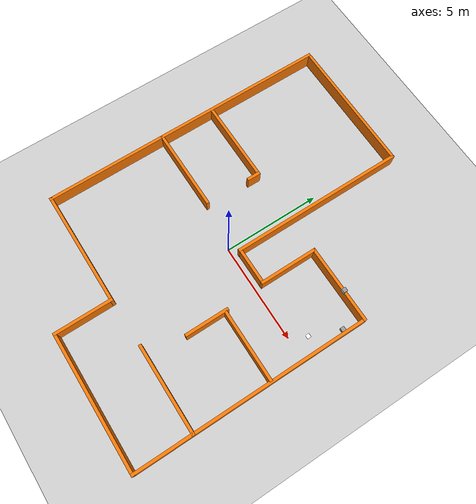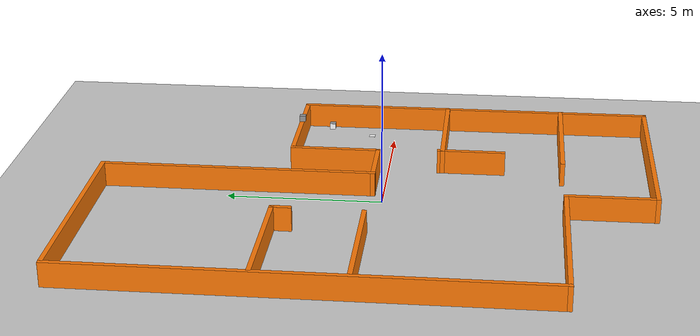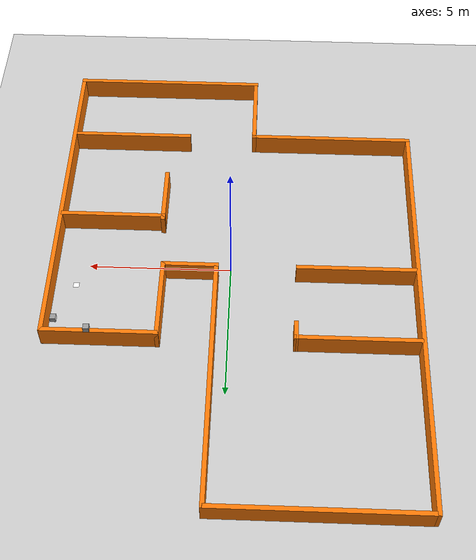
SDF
<sdf version="1.7">
 <world name="default">
  <model name="ground_plane">
   <static>1</static>
   <link name="link">
    <collision name="collision">
     <geometry><plane><normal>0 0 1</normal><size>100 100</size></plane></geometry>
     <surface>
      <contact><collide_bitmask>65535</collide_bitmask></contact>
      <friction><ode><mu>100</mu><mu2>50</mu2></ode></friction>
     </surface>
    </collision>
    <visual name="visual">
     <cast_shadows>0</cast_shadows>
     <geometry><plane><normal>0 0 1</normal><size>100 100</size></plane></geometry>
     <material>
      <script><uri>file://media/materials/scripts/gazebo.material</uri><name>Gazebo/Grey</name></script>
     </material>
    </visual>
   </link>
  </model>
  <model name="house_1">
   <link name="Wall_43">
    <pose>-2.787 8.425 0 0 -0 0</pose>
    <inertial>
     <mass>1</mass>
     <inertia><ixx>1</ixx><ixy>0</ixy><ixz>0</ixz><iyy>1</iyy><iyz>0</iyz><izz>1</izz></inertia>
    </inertial>
    <visual name="Wall_43_Visual">
     <pose>0 0 0.4 0 -0 0</pose>
     <geometry><box><size>7 0.15 0.8</size></box></geometry>
     <material>
      <script><uri>file://media/materials/scripts/gazebo.material</uri><name>Gazebo/Grey</name></script>
      <ambient>0.996 0.475 0.02 1</ambient>
      <shader type="pixel"><normal_map>__default__</normal_map></shader>
      <diffuse>0.7 0.7 0.7 1</diffuse>
      <specular>0.01 0.01 0.01 1</specular>
      <emissive>0 0 0 1</emissive>
     </material>
     <meta><layer>0</layer></meta>
    </visual>
    <collision name="Wall_43_Collision">
     <pose>0 0 0.4 0 -0 0</pose>
     <geometry><box><size>7 0.15 0.8</size></box></geometry>
     <surface>
      <friction>
       <ode><mu>1</mu><mu2>1</mu2><fdir1>0 0 0</fdir1><slip1>0</slip1><slip2>0</slip2></ode>
       <torsional>
        <coefficient>1</coefficient>
        <patch_radius>0</patch_radius>
        <surface_radius>0</surface_radius>
        <use_patch_radius>1</use_patch_radius>
        <ode><slip>0</slip></ode>
       </torsional>
      </friction>
      <bounce><restitution_coefficient>0</restitution_coefficient><threshold>1e+06</threshold></bounce>
      <contact>
       <collide_without_contact>0</collide_without_contact>
       <collide_without_contact_bitmask>1</collide_without_contact_bitmask>
       <collide_bitmask>1</collide_bitmask>
       <ode>
        <soft_cfm>0</soft_cfm>
        <soft_erp>0.2</soft_erp>
        <kp>1e+13</kp>
        <kd>1</kd>
        <max_vel>0.01</max_vel>
        <min_depth>0</min_depth>
       </ode>
       <bullet>
        <split_impulse>1</split_impulse>
        <split_impulse_penetration_threshold>-0.01</split_impulse_penetration_threshold>
        <soft_cfm>0</soft_cfm>
        <soft_erp>0.2</soft_erp>
        <kp>1e+13</kp>
        <kd>1</kd>
       </bullet>
      </contact>
     </surface>
    </collision>
   </link>
   <link name="Wall_44">
    <pose>0.642 3.99 0 0 0 -1.5708</pose>
    <inertial>
     <mass>1</mass>
     <inertia><ixx>1</ixx><ixy>0</ixy><ixz>0</ixz><iyy>1</iyy><iyz>0</iyz><izz>1</izz></inertia>
    </inertial>
    <visual name="Wall_44_Visual">
     <pose>0 0 0.4 0 -0 0</pose>
     <geometry><box><size>9 0.15 0.8</size></box></geometry>
     <material>
      <script><uri>file://media/materials/scripts/gazebo.material</uri><name>Gazebo/Grey</name></script>
      <ambient>0.996 0.475 0.02 1</ambient>
      <shader type="pixel"><normal_map>__default__</normal_map></shader>
      <diffuse>0.7 0.7 0.7 1</diffuse>
      <specular>0.01 0.01 0.01 1</specular>
      <emissive>0 0 0 1</emissive>
     </material>
     <meta><layer>0</layer></meta>
    </visual>
    <collision name="Wall_44_Collision">
     <pose>0 0 0.4 0 -0 0</pose>
     <geometry><box><size>9 0.15 0.8</size></box></geometry>
     <surface>
      <friction>
       <ode><mu>1</mu><mu2>1</mu2><fdir1>0 0 0</fdir1><slip1>0</slip1><slip2>0</slip2></ode>
       <torsional>
        <coefficient>1</coefficient>
        <patch_radius>0</patch_radius>
        <surface_radius>0</surface_radius>
        <use_patch_radius>1</use_patch_radius>
        <ode><slip>0</slip></ode>
       </torsional>
      </friction>
      <bounce><restitution_coefficient>0</restitution_coefficient><threshold>1e+06</threshold></bounce>
      <contact>
       <collide_without_contact>0</collide_without_contact>
       <collide_without_contact_bitmask>1</collide_without_contact_bitmask>
       <collide_bitmask>1</collide_bitmask>
       <ode>
        <soft_cfm>0</soft_cfm>
        <soft_erp>0.2</soft_erp>
        <kp>1e+13</kp>
        <kd>1</kd>
        <max_vel>0.01</max_vel>
        <min_depth>0</min_depth>
       </ode>
       <bullet>
        <split_impulse>1</split_impulse>
        <split_impulse_penetration_threshold>-0.01</split_impulse_penetration_threshold>
        <soft_cfm>0</soft_cfm>
        <soft_erp>0.2</soft_erp>
        <kp>1e+13</kp>
        <kd>1</kd>
       </bullet>
      </contact>
     </surface>
    </collision>
   </link>
   <link name="Wall_45">
    <pose>1.563 -0.425 0 0 -0 0</pose>
    <inertial>
     <mass>1</mass>
     <inertia><ixx>1</ixx><ixy>0</ixy><ixz>0</ixz><iyy>1</iyy><iyz>0</iyz><izz>1</izz></inertia>
    </inertial>
    <visual name="Wall_45_Visual">
     <pose>0 0 0.4 0 -0 0</pose>
     <geometry><box><size>2 0.15 0.8</size></box></geometry>
     <material>
      <script><uri>file://media/materials/scripts/gazebo.material</uri><name>Gazebo/Grey</name></script>
      <ambient>0.996 0.475 0.02 1</ambient>
      <shader type="pixel"><normal_map>__default__</normal_map></shader>
      <diffuse>0.7 0.7 0.7 1</diffuse>
      <specular>0.01 0.01 0.01 1</specular>
      <emissive>0 0 0 1</emissive>
     </material>
     <meta><layer>0</layer></meta>
    </visual>
    <collision name="Wall_45_Collision">
     <pose>0 0 0.4 0 -0 0</pose>
     <geometry><box><size>2 0.15 0.8</size></box></geometry>
     <surface>
      <friction>
       <ode><mu>1</mu><mu2>1</mu2><fdir1>0 0 0</fdir1><slip1>0</slip1><slip2>0</slip2></ode>
       <torsional>
        <coefficient>1</coefficient>
        <patch_radius>0</patch_radius>
        <surface_radius>0</surface_radius>
        <use_patch_radius>1</use_patch_radius>
        <ode><slip>0</slip></ode>
       </torsional>
      </friction>
      <bounce><restitution_coefficient>0</restitution_coefficient><threshold>1e+06</threshold></bounce>
      <contact>
       <collide_without_contact>0</collide_without_contact>
       <collide_without_contact_bitmask>1</collide_without_contact_bitmask>
       <collide_bitmask>1</collide_bitmask>
       <ode>
        <soft_cfm>0</soft_cfm>
        <soft_erp>0.2</soft_erp>
        <kp>1e+13</kp>
        <kd>1</kd>
        <max_vel>0.01</max_vel>
        <min_depth>0</min_depth>
       </ode>
       <bullet>
        <split_impulse>1</split_impulse>
        <split_impulse_penetration_threshold>-0.01</split_impulse_penetration_threshold>
        <soft_cfm>0</soft_cfm>
        <soft_erp>0.2</soft_erp>
        <kp>1e+13</kp>
        <kd>1</kd>
       </bullet>
      </contact>
     </surface>
    </collision>
   </link>
   <link name="Wall_46">
    <pose>2.488 1 0 0 -0 1.5708</pose>
    <inertial>
     <mass>1</mass>
     <inertia><ixx>1</ixx><ixy>0</ixy><ixz>0</ixz><iyy>1</iyy><iyz>0</iyz><izz>1</izz></inertia>
    </inertial>
    <visual name="Wall_46_Visual">
     <pose>0 0 0.4 0 -0 0</pose>
     <geometry><box><size>3 0.15 0.8</size></box></geometry>
     <material>
      <script><uri>file://media/materials/scripts/gazebo.material</uri><name>Gazebo/Grey</name></script>
      <ambient>0.996 0.475 0.02 1</ambient>
      <shader type="pixel"><normal_map>__default__</normal_map></shader>
      <diffuse>0.7 0.7 0.7 1</diffuse>
      <specular>0.01 0.01 0.01 1</specular>
      <emissive>0 0 0 1</emissive>
     </material>
     <meta><layer>0</layer></meta>
    </visual>
    <collision name="Wall_46_Collision">
     <pose>0 0 0.4 0 -0 0</pose>
     <geometry><box><size>3 0.15 0.8</size></box></geometry>
     <surface>
      <friction>
       <ode><mu>1</mu><mu2>1</mu2><fdir1>0 0 0</fdir1><slip1>0</slip1><slip2>0</slip2></ode>
       <torsional>
        <coefficient>1</coefficient>
        <patch_radius>0</patch_radius>
        <surface_radius>0</surface_radius>
        <use_patch_radius>1</use_patch_radius>
        <ode><slip>0</slip></ode>
       </torsional>
      </friction>
      <bounce><restitution_coefficient>0</restitution_coefficient><threshold>1e+06</threshold></bounce>
      <contact>
       <collide_without_contact>0</collide_without_contact>
       <collide_without_contact_bitmask>1</collide_without_contact_bitmask>
       <collide_bitmask>1</collide_bitmask>
       <ode>
        <soft_cfm>0</soft_cfm>
        <soft_erp>0.2</soft_erp>
        <kp>1e+13</kp>
        <kd>1</kd>
        <max_vel>0.01</max_vel>
        <min_depth>0</min_depth>
       </ode>
       <bullet>
        <split_impulse>1</split_impulse>
        <split_impulse_penetration_threshold>-0.01</split_impulse_penetration_threshold>
        <soft_cfm>0</soft_cfm>
        <soft_erp>0.2</soft_erp>
        <kp>1e+13</kp>
        <kd>1</kd>
       </bullet>
      </contact>
     </surface>
    </collision>
   </link>
   <link name="Wall_47">
    <pose>4.413 2.425 0 0 -0 0</pose>
    <visual name="Wall_47_Visual">
     <pose>0 0 0.4 0 -0 0</pose>
     <geometry><box><size>4 0.15 0.8</size></box></geometry>
     <material>
      <script><uri>file://media/materials/scripts/gazebo.material</uri><name>Gazebo/Grey</name></script>
      <ambient>0.996078 0.47451 0.0196078 1</ambient>
      <shader type="pixel"/>
      <diffuse>0.7 0.7 0.7 1</diffuse>
      <specular>0.01 0.01 0.01 1</specular>
      <emissive>0 0 0 1</emissive>
     </material>
     <meta><layer>0</layer></meta>
    </visual>
    <collision name="Wall_47_Collision">
     <pose>0 0 0.4 0 -0 0</pose>
     <geometry><box><size>4 0.15 0.8</size></box></geometry>
     <surface>
      <friction>
       <ode><mu>1</mu><mu2>1</mu2><fdir1>0 0 0</fdir1><slip1>0</slip1><slip2>0</slip2></ode>
       <torsional>
        <coefficient>1</coefficient>
        <patch_radius>0</patch_radius>
        <surface_radius>0</surface_radius>
        <use_patch_radius>1</use_patch_radius>
        <ode><slip>0</slip></ode>
       </torsional>
      </friction>
      <bounce><restitution_coefficient>0</restitution_coefficient><threshold>1e+06</threshold></bounce>
      <contact>
       <collide_without_contact>0</collide_without_contact>
       <collide_without_contact_bitmask>1</collide_without_contact_bitmask>
       <collide_bitmask>1</collide_bitmask>
       <ode>
        <soft_cfm>0</soft_cfm>
        <soft_erp>0.2</soft_erp>
        <kp>1e+13</kp>
        <kd>1</kd>
        <max_vel>0.01</max_vel>
        <min_depth>0</min_depth>
       </ode>
       <bullet>
        <split_impulse>1</split_impulse>
        <split_impulse_penetration_threshold>-0.01</split_impulse_penetration_threshold>
        <soft_cfm>0</soft_cfm>
        <soft_erp>0.2</soft_erp>
        <kp>1e+13</kp>
        <kd>1</kd>
       </bullet>
      </contact>
     </surface>
    </collision>
   </link>
   <link name="Wall_48">
    <pose>6.338 -3.5 0 0 0 -1.5708</pose>
    <inertial>
     <mass>1</mass>
     <inertia><ixx>1</ixx><ixy>0</ixy><ixz>0</ixz><iyy>1</iyy><iyz>0</iyz><izz>1</izz></inertia>
    </inertial>
    <visual name="Wall_48_Visual">
     <pose>0 0 0.4 0 -0 0</pose>
     <geometry><box><size>12 0.15 0.8</size></box></geometry>
     <material>
      <script><uri>file://media/materials/scripts/gazebo.material</uri><name>Gazebo/Grey</name></script>
      <ambient>0.996 0.475 0.02 1</ambient>
      <shader type="pixel"><normal_map>__default__</normal_map></shader>
      <diffuse>0.7 0.7 0.7 1</diffuse>
      <specular>0.01 0.01 0.01 1</specular>
      <emissive>0 0 0 1</emissive>
     </material>
     <meta><layer>0</layer></meta>
    </visual>
    <collision name="Wall_48_Collision">
     <pose>0 0 0.4 0 -0 0</pose>
     <geometry><box><size>12 0.15 0.8</size></box></geometry>
     <surface>
      <friction>
       <ode><mu>1</mu><mu2>1</mu2><fdir1>0 0 0</fdir1><slip1>0</slip1><slip2>0</slip2></ode>
       <torsional>
        <coefficient>1</coefficient>
        <patch_radius>0</patch_radius>
        <surface_radius>0</surface_radius>
        <use_patch_radius>1</use_patch_radius>
        <ode><slip>0</slip></ode>
       </torsional>
      </friction>
      <bounce><restitution_coefficient>0</restitution_coefficient><threshold>1e+06</threshold></bounce>
      <contact>
       <collide_without_contact>0</collide_without_contact>
       <collide_without_contact_bitmask>1</collide_without_contact_bitmask>
       <collide_bitmask>1</collide_bitmask>
       <ode>
        <soft_cfm>0</soft_cfm>
        <soft_erp>0.2</soft_erp>
        <kp>1e+13</kp>
        <kd>1</kd>
        <max_vel>0.01</max_vel>
        <min_depth>0</min_depth>
       </ode>
       <bullet>
        <split_impulse>1</split_impulse>
        <split_impulse_penetration_threshold>-0.01</split_impulse_penetration_threshold>
        <soft_cfm>0</soft_cfm>
        <soft_erp>0.2</soft_erp>
        <kp>1e+13</kp>
        <kd>1</kd>
       </bullet>
      </contact>
     </surface>
    </collision>
   </link>
   <link name="Wall_49">
    <pose>2.913 -9.425 0 0 -0 3.14159</pose>
    <inertial>
     <mass>1</mass>
     <inertia><ixx>1</ixx><ixy>0</ixy><ixz>0</ixz><iyy>1</iyy><iyz>0</iyz><izz>1</izz></inertia>
    </inertial>
    <visual name="Wall_49_Visual">
     <pose>0 0 0.4 0 -0 0</pose>
     <geometry><box><size>7 0.15 0.8</size></box></geometry>
     <material>
      <script><uri>file://media/materials/scripts/gazebo.material</uri><name>Gazebo/Grey</name></script>
      <ambient>0.996 0.475 0.02 1</ambient>
      <shader type="pixel"><normal_map>__default__</normal_map></shader>
      <diffuse>0.7 0.7 0.7 1</diffuse>
      <specular>0.01 0.01 0.01 1</specular>
      <emissive>0 0 0 1</emissive>
     </material>
     <meta><layer>0</layer></meta>
    </visual>
    <collision name="Wall_49_Collision">
     <pose>0 0 0.4 0 -0 0</pose>
     <geometry><box><size>7 0.15 0.8</size></box></geometry>
     <surface>
      <friction>
       <ode><mu>1</mu><mu2>1</mu2><fdir1>0 0 0</fdir1><slip1>0</slip1><slip2>0</slip2></ode>
       <torsional>
        <coefficient>1</coefficient>
        <patch_radius>0</patch_radius>
        <surface_radius>0</surface_radius>
        <use_patch_radius>1</use_patch_radius>
        <ode><slip>0</slip></ode>
       </torsional>
      </friction>
      <bounce><restitution_coefficient>0</restitution_coefficient><threshold>1e+06</threshold></bounce>
      <contact>
       <collide_without_contact>0</collide_without_contact>
       <collide_without_contact_bitmask>1</collide_without_contact_bitmask>
       <collide_bitmask>1</collide_bitmask>
       <ode>
        <soft_cfm>0</soft_cfm>
        <soft_erp>0.2</soft_erp>
        <kp>1e+13</kp>
        <kd>1</kd>
        <max_vel>0.01</max_vel>
        <min_depth>0</min_depth>
       </ode>
       <bullet>
        <split_impulse>1</split_impulse>
        <split_impulse_penetration_threshold>-0.01</split_impulse_penetration_threshold>
        <soft_cfm>0</soft_cfm>
        <soft_erp>0.2</soft_erp>
        <kp>1e+13</kp>
        <kd>1</kd>
       </bullet>
      </contact>
     </surface>
    </collision>
   </link>
   <link name="Wall_50">
    <pose>-0.512 -8 0 0 -0 1.5708</pose>
    <inertial>
     <mass>1</mass>
     <inertia><ixx>1</ixx><ixy>0</ixy><ixz>0</ixz><iyy>1</iyy><iyz>0</iyz><izz>1</izz></inertia>
    </inertial>
    <visual name="Wall_50_Visual">
     <pose>0 0 0.4 0 -0 0</pose>
     <geometry><box><size>3 0.15 0.8</size></box></geometry>
     <material>
      <script><uri>file://media/materials/scripts/gazebo.material</uri><name>Gazebo/Grey</name></script>
      <ambient>0.996 0.475 0.02 1</ambient>
      <shader type="pixel"><normal_map>__default__</normal_map></shader>
      <diffuse>0.7 0.7 0.7 1</diffuse>
      <specular>0.01 0.01 0.01 1</specular>
      <emissive>0 0 0 1</emissive>
     </material>
     <meta><layer>0</layer></meta>
    </visual>
    <collision name="Wall_50_Collision">
     <pose>0 0 0.4 0 -0 0</pose>
     <geometry><box><size>3 0.15 0.8</size></box></geometry>
     <surface>
      <friction>
       <ode><mu>1</mu><mu2>1</mu2><fdir1>0 0 0</fdir1><slip1>0</slip1><slip2>0</slip2></ode>
       <torsional>
        <coefficient>1</coefficient>
        <patch_radius>0</patch_radius>
        <surface_radius>0</surface_radius>
        <use_patch_radius>1</use_patch_radius>
        <ode><slip>0</slip></ode>
       </torsional>
      </friction>
      <bounce><restitution_coefficient>0</restitution_coefficient><threshold>1e+06</threshold></bounce>
      <contact>
       <collide_without_contact>0</collide_without_contact>
       <collide_without_contact_bitmask>1</collide_without_contact_bitmask>
       <collide_bitmask>1</collide_bitmask>
       <ode>
        <soft_cfm>0</soft_cfm>
        <soft_erp>0.2</soft_erp>
        <kp>1e+13</kp>
        <kd>1</kd>
        <max_vel>0.01</max_vel>
        <min_depth>0</min_depth>
       </ode>
       <bullet>
        <split_impulse>1</split_impulse>
        <split_impulse_penetration_threshold>-0.01</split_impulse_penetration_threshold>
        <soft_cfm>0</soft_cfm>
        <soft_erp>0.2</soft_erp>
        <kp>1e+13</kp>
        <kd>1</kd>
       </bullet>
      </contact>
     </surface>
    </collision>
   </link>
   <link name="Wall_51">
    <pose>-3.425 -6.575 0 0 -0 3.14159</pose>
    <visual name="Wall_51_Visual">
     <pose>0 0 0.4 0 -0 0</pose>
     <geometry><box><size>5.976 0.15 0.8</size></box></geometry>
     <material>
      <script><uri>file://media/materials/scripts/gazebo.material</uri><name>Gazebo/Grey</name></script>
      <ambient>0.996078 0.47451 0.0196078 1</ambient>
      <shader type="pixel"/>
      <diffuse>0.7 0.7 0.7 1</diffuse>
      <specular>0.01 0.01 0.01 1</specular>
      <emissive>0 0 0 1</emissive>
     </material>
     <meta><layer>0</layer></meta>
    </visual>
    <collision name="Wall_51_Collision">
     <pose>0 0 0.4 0 -0 0</pose>
     <geometry><box><size>5.976 0.15 0.8</size></box></geometry>
     <surface>
      <friction>
       <ode><mu>1</mu><mu2>1</mu2><fdir1>0 0 0</fdir1><slip1>0</slip1><slip2>0</slip2></ode>
       <torsional>
        <coefficient>1</coefficient>
        <patch_radius>0</patch_radius>
        <surface_radius>0</surface_radius>
        <use_patch_radius>1</use_patch_radius>
        <ode><slip>0</slip></ode>
       </torsional>
      </friction>
      <bounce><restitution_coefficient>0</restitution_coefficient><threshold>1e+06</threshold></bounce>
      <contact>
       <collide_without_contact>0</collide_without_contact>
       <collide_without_contact_bitmask>1</collide_without_contact_bitmask>
       <collide_bitmask>1</collide_bitmask>
       <ode>
        <soft_cfm>0</soft_cfm>
        <soft_erp>0.2</soft_erp>
        <kp>1e+13</kp>
        <kd>1</kd>
        <max_vel>0.01</max_vel>
        <min_depth>0</min_depth>
       </ode>
       <bullet>
        <split_impulse>1</split_impulse>
        <split_impulse_penetration_threshold>-0.01</split_impulse_penetration_threshold>
        <soft_cfm>0</soft_cfm>
        <soft_erp>0.2</soft_erp>
        <kp>1e+13</kp>
        <kd>1</kd>
       </bullet>
      </contact>
     </surface>
    </collision>
   </link>
   <link name="Wall_52">
    <pose>-6.338 0.9215 0 0 -0 1.5708</pose>
    <visual name="Wall_52_Visual">
     <pose>0 0 0.4 0 -0 0</pose>
     <geometry><box><size>15.1433 0.15 0.8</size></box></geometry>
     <material>
      <script><uri>file://media/materials/scripts/gazebo.material</uri><name>Gazebo/Grey</name></script>
      <ambient>0.996078 0.47451 0.0196078 1</ambient>
      <shader type="pixel"/>
      <diffuse>0.7 0.7 0.7 1</diffuse>
      <specular>0.01 0.01 0.01 1</specular>
      <emissive>0 0 0 1</emissive>
     </material>
     <meta><layer>0</layer></meta>
    </visual>
    <collision name="Wall_52_Collision">
     <pose>0 0 0.4 0 -0 0</pose>
     <geometry><box><size>15.1433 0.15 0.8</size></box></geometry>
     <surface>
      <friction>
       <ode><mu>1</mu><mu2>1</mu2><fdir1>0 0 0</fdir1><slip1>0</slip1><slip2>0</slip2></ode>
       <torsional>
        <coefficient>1</coefficient>
        <patch_radius>0</patch_radius>
        <surface_radius>0</surface_radius>
        <use_patch_radius>1</use_patch_radius>
        <ode><slip>0</slip></ode>
       </torsional>
      </friction>
      <bounce><restitution_coefficient>0</restitution_coefficient><threshold>1e+06</threshold></bounce>
      <contact>
       <collide_without_contact>0</collide_without_contact>
       <collide_without_contact_bitmask>1</collide_without_contact_bitmask>
       <collide_bitmask>1</collide_bitmask>
       <ode>
        <soft_cfm>0</soft_cfm>
        <soft_erp>0.2</soft_erp>
        <kp>1e+13</kp>
        <kd>1</kd>
        <max_vel>0.01</max_vel>
        <min_depth>0</min_depth>
       </ode>
       <bullet>
        <split_impulse>1</split_impulse>
        <split_impulse_penetration_threshold>-0.01</split_impulse_penetration_threshold>
        <soft_cfm>0</soft_cfm>
        <soft_erp>0.2</soft_erp>
        <kp>1e+13</kp>
        <kd>1</kd>
       </bullet>
      </contact>
     </surface>
    </collision>
   </link>
   <link name="Wall_54">
    <pose>-4.182 2.435 0 0 -0 0</pose>
    <visual name="Wall_54_Visual">
     <pose>0 0 0.4 0 -0 0</pose>
     <geometry><box><size>4.25 0.15 0.8</size></box></geometry>
     <material>
      <script><uri>file://media/materials/scripts/gazebo.material</uri><name>Gazebo/Grey</name></script>
      <ambient>0.996078 0.47451 0.0196078 1</ambient>
      <shader type="pixel"/>
      <diffuse>0.7 0.7 0.7 1</diffuse>
      <specular>0.01 0.01 0.01 1</specular>
      <emissive>0 0 0 1</emissive>
     </material>
     <meta><layer>0</layer></meta>
    </visual>
    <collision name="Wall_54_Collision">
     <pose>0 0 0.4 0 -0 0</pose>
     <geometry><box><size>4.25 0.15 0.8</size></box></geometry>
     <surface>
      <friction>
       <ode><mu>1</mu><mu2>1</mu2><fdir1>0 0 0</fdir1><slip1>0</slip1><slip2>0</slip2></ode>
       <torsional>
        <coefficient>1</coefficient>
        <patch_radius>0</patch_radius>
        <surface_radius>0</surface_radius>
        <use_patch_radius>1</use_patch_radius>
        <ode><slip>0</slip></ode>
       </torsional>
      </friction>
      <bounce><restitution_coefficient>0</restitution_coefficient><threshold>1e+06</threshold></bounce>
      <contact>
       <collide_without_contact>0</collide_without_contact>
       <collide_without_contact_bitmask>1</collide_without_contact_bitmask>
       <collide_bitmask>1</collide_bitmask>
       <ode>
        <soft_cfm>0</soft_cfm>
        <soft_erp>0.2</soft_erp>
        <kp>1e+13</kp>
        <kd>1</kd>
        <max_vel>0.01</max_vel>
        <min_depth>0</min_depth>
       </ode>
       <bullet>
        <split_impulse>1</split_impulse>
        <split_impulse_penetration_threshold>-0.01</split_impulse_penetration_threshold>
        <soft_cfm>0</soft_cfm>
        <soft_erp>0.2</soft_erp>
        <kp>1e+13</kp>
        <kd>1</kd>
       </bullet>
      </contact>
     </surface>
    </collision>
   </link>
   <link name="Wall_56">
    <pose>-4.252 -0.433 0 0 -0 0</pose>
    <visual name="Wall_56_Visual">
     <pose>0 0 0.4 0 -0 0</pose>
     <geometry><box><size>4.25 0.15 0.8</size></box></geometry>
     <material>
      <script><uri>file://media/materials/scripts/gazebo.material</uri><name>Gazebo/Grey</name></script>
      <ambient>0.996078 0.47451 0.0196078 1</ambient>
      <shader type="pixel"/>
      <diffuse>0.7 0.7 0.7 1</diffuse>
      <specular>0.01 0.01 0.01 1</specular>
      <emissive>0 0 0 1</emissive>
     </material>
     <meta><layer>0</layer></meta>
    </visual>
    <collision name="Wall_56_Collision">
     <pose>0 0 0.4 0 -0 0</pose>
     <geometry><box><size>4.25 0.15 0.8</size></box></geometry>
     <surface>
      <friction>
       <ode><mu>1</mu><mu2>1</mu2><fdir1>0 0 0</fdir1><slip1>0</slip1><slip2>0</slip2></ode>
       <torsional>
        <coefficient>1</coefficient>
        <patch_radius>0</patch_radius>
        <surface_radius>0</surface_radius>
        <use_patch_radius>1</use_patch_radius>
        <ode><slip>0</slip></ode>
       </torsional>
      </friction>
      <bounce><restitution_coefficient>0</restitution_coefficient><threshold>1e+06</threshold></bounce>
      <contact>
       <collide_without_contact>0</collide_without_contact>
       <collide_without_contact_bitmask>1</collide_without_contact_bitmask>
       <collide_bitmask>1</collide_bitmask>
       <ode>
        <soft_cfm>0</soft_cfm>
        <soft_erp>0.2</soft_erp>
        <kp>1e+13</kp>
        <kd>1</kd>
        <max_vel>0.01</max_vel>
        <min_depth>0</min_depth>
       </ode>
       <bullet>
        <split_impulse>1</split_impulse>
        <split_impulse_penetration_threshold>-0.01</split_impulse_penetration_threshold>
        <soft_cfm>0</soft_cfm>
        <soft_erp>0.2</soft_erp>
        <kp>1e+13</kp>
        <kd>1</kd>
       </bullet>
      </contact>
     </surface>
    </collision>
   </link>
   <link name="Wall_58">
    <pose>-2.132 2.16 0 0 0 -1.5808</pose>
    <inertial>
     <mass>1</mass>
     <inertia><ixx>1</ixx><ixy>0</ixy><ixz>0</ixz><iyy>1</iyy><iyz>0</iyz><izz>1</izz></inertia>
    </inertial>
    <visual name="Wall_58_Visual">
     <pose>0 0 0.4 0 -0 0</pose>
     <geometry><box><size>0.7 0.15 0.8</size></box></geometry>
     <material>
      <script><uri>file://media/materials/scripts/gazebo.material</uri><name>Gazebo/Grey</name></script>
      <ambient>0.996 0.475 0.02 1</ambient>
      <shader type="pixel"><normal_map>__default__</normal_map></shader>
      <diffuse>0.7 0.7 0.7 1</diffuse>
      <specular>0.01 0.01 0.01 1</specular>
      <emissive>0 0 0 1</emissive>
     </material>
     <meta><layer>0</layer></meta>
    </visual>
    <collision name="Wall_58_Collision">
     <pose>0 0 0.4 0 -0 0</pose>
     <geometry><box><size>0.7 0.15 0.8</size></box></geometry>
     <surface>
      <friction>
       <ode><mu>1</mu><mu2>1</mu2><fdir1>0 0 0</fdir1><slip1>0</slip1><slip2>0</slip2></ode>
       <torsional>
        <coefficient>1</coefficient>
        <patch_radius>0</patch_radius>
        <surface_radius>0</surface_radius>
        <use_patch_radius>1</use_patch_radius>
        <ode><slip>0</slip></ode>
       </torsional>
      </friction>
      <bounce><restitution_coefficient>0</restitution_coefficient><threshold>1e+06</threshold></bounce>
      <contact>
       <collide_without_contact>0</collide_without_contact>
       <collide_without_contact_bitmask>1</collide_without_contact_bitmask>
       <collide_bitmask>1</collide_bitmask>
       <ode>
        <soft_cfm>0</soft_cfm>
        <soft_erp>0.2</soft_erp>
        <kp>1e+13</kp>
        <kd>1</kd>
        <max_vel>0.01</max_vel>
        <min_depth>0</min_depth>
       </ode>
       <bullet>
        <split_impulse>1</split_impulse>
        <split_impulse_penetration_threshold>-0.01</split_impulse_penetration_threshold>
        <soft_cfm>0</soft_cfm>
        <soft_erp>0.2</soft_erp>
        <kp>1e+13</kp>
        <kd>1</kd>
       </bullet>
      </contact>
     </surface>
    </collision>
   </link>
   <link name="Wall_60">
    <pose>4.454 -2.562 0 0 -0 3.14159</pose>
    <inertial>
     <mass>1</mass>
     <inertia><ixx>1</ixx><ixy>0</ixy><ixz>0</ixz><iyy>1</iyy><iyz>0</iyz><izz>1</izz></inertia>
    </inertial>
    <visual name="Wall_60_Visual">
     <pose>0 0 0.4 0 -0 0</pose>
     <geometry><box><size>3.75 0.15 0.8</size></box></geometry>
     <material>
      <script><uri>file://media/materials/scripts/gazebo.material</uri><name>Gazebo/Grey</name></script>
      <ambient>0.996 0.475 0.02 1</ambient>
      <shader type="pixel"><normal_map>__default__</normal_map></shader>
      <diffuse>0.7 0.7 0.7 1</diffuse>
      <specular>0.01 0.01 0.01 1</specular>
      <emissive>0 0 0 1</emissive>
     </material>
     <meta><layer>0</layer></meta>
    </visual>
    <collision name="Wall_60_Collision">
     <pose>0 0 0.4 0 -0 0</pose>
     <geometry><box><size>3.75 0.15 0.8</size></box></geometry>
     <surface>
      <friction>
       <ode><mu>1</mu><mu2>1</mu2><fdir1>0 0 0</fdir1><slip1>0</slip1><slip2>0</slip2></ode>
       <torsional>
        <coefficient>1</coefficient>
        <patch_radius>0</patch_radius>
        <surface_radius>0</surface_radius>
        <use_patch_radius>1</use_patch_radius>
        <ode><slip>0</slip></ode>
       </torsional>
      </friction>
      <bounce><restitution_coefficient>0</restitution_coefficient><threshold>1e+06</threshold></bounce>
      <contact>
       <collide_without_contact>0</collide_without_contact>
       <collide_without_contact_bitmask>1</collide_without_contact_bitmask>
       <collide_bitmask>1</collide_bitmask>
       <ode>
        <soft_cfm>0</soft_cfm>
        <soft_erp>0.2</soft_erp>
        <kp>1e+13</kp>
        <kd>1</kd>
        <max_vel>0.01</max_vel>
        <min_depth>0</min_depth>
       </ode>
       <bullet>
        <split_impulse>1</split_impulse>
        <split_impulse_penetration_threshold>-0.01</split_impulse_penetration_threshold>
        <soft_cfm>0</soft_cfm>
        <soft_erp>0.2</soft_erp>
        <kp>1e+13</kp>
        <kd>1</kd>
       </bullet>
      </contact>
     </surface>
    </collision>
   </link>
   <link name="Wall_61">
    <pose>2.654 -3.512 0 0 0 -1.5708</pose>
    <inertial>
     <mass>1</mass>
     <inertia><ixx>1</ixx><ixy>0</ixy><ixz>0</ixz><iyy>1</iyy><iyz>0</iyz><izz>1</izz></inertia>
    </inertial>
    <visual name="Wall_61_Visual">
     <pose>0 0 0.4 0 -0 0</pose>
     <geometry><box><size>2.25 0.15 0.8</size></box></geometry>
     <material>
      <script><uri>file://media/materials/scripts/gazebo.material</uri><name>Gazebo/Grey</name></script>
      <ambient>0.996 0.475 0.02 1</ambient>
      <shader type="pixel"><normal_map>__default__</normal_map></shader>
      <diffuse>0.7 0.7 0.7 1</diffuse>
      <specular>0.01 0.01 0.01 1</specular>
      <emissive>0 0 0 1</emissive>
     </material>
     <meta><layer>0</layer></meta>
    </visual>
    <collision name="Wall_61_Collision">
     <pose>0 0 0.4 0 -0 0</pose>
     <geometry><box><size>2.25 0.15 0.8</size></box></geometry>
     <surface>
      <friction>
       <ode><mu>1</mu><mu2>1</mu2><fdir1>0 0 0</fdir1><slip1>0</slip1><slip2>0</slip2></ode>
       <torsional>
        <coefficient>1</coefficient>
        <patch_radius>0</patch_radius>
        <surface_radius>0</surface_radius>
        <use_patch_radius>1</use_patch_radius>
        <ode><slip>0</slip></ode>
       </torsional>
      </friction>
      <bounce><restitution_coefficient>0</restitution_coefficient><threshold>1e+06</threshold></bounce>
      <contact>
       <collide_without_contact>0</collide_without_contact>
       <collide_without_contact_bitmask>1</collide_without_contact_bitmask>
       <collide_bitmask>1</collide_bitmask>
       <ode>
        <soft_cfm>0</soft_cfm>
        <soft_erp>0.2</soft_erp>
        <kp>1e+13</kp>
        <kd>1</kd>
        <max_vel>0.01</max_vel>
        <min_depth>0</min_depth>
       </ode>
       <bullet>
        <split_impulse>1</split_impulse>
        <split_impulse_penetration_threshold>-0.01</split_impulse_penetration_threshold>
        <soft_cfm>0</soft_cfm>
        <soft_erp>0.2</soft_erp>
        <kp>1e+13</kp>
        <kd>1</kd>
       </bullet>
      </contact>
     </surface>
    </collision>
   </link>
   <link name="Wall_63">
    <pose>4.157 -6.517 0 0 -0 0</pose>
    <inertial>
     <mass>1</mass>
     <inertia><ixx>1</ixx><ixy>0</ixy><ixz>0</ixz><iyy>1</iyy><iyz>0</iyz><izz>1</izz></inertia>
    </inertial>
    <visual name="Wall_63_Visual">
     <pose>0 0 0.4 0 -0 0</pose>
     <geometry><box><size>4.5 0.15 0.8</size></box></geometry>
     <material>
      <script><uri>file://media/materials/scripts/gazebo.material</uri><name>Gazebo/Grey</name></script>
      <ambient>0.996 0.475 0.02 1</ambient>
      <shader type="pixel"><normal_map>__default__</normal_map></shader>
      <diffuse>0.7 0.7 0.7 1</diffuse>
      <specular>0.01 0.01 0.01 1</specular>
      <emissive>0 0 0 1</emissive>
     </material>
     <meta><layer>0</layer></meta>
    </visual>
    <collision name="Wall_63_Collision">
     <pose>0 0 0.4 0 -0 0</pose>
     <geometry><box><size>4.5 0.15 0.8</size></box></geometry>
     <surface>
      <friction>
       <ode><mu>1</mu><mu2>1</mu2><fdir1>0 0 0</fdir1><slip1>0</slip1><slip2>0</slip2></ode>
       <torsional>
        <coefficient>1</coefficient>
        <patch_radius>0</patch_radius>
        <surface_radius>0</surface_radius>
        <use_patch_radius>1</use_patch_radius>
        <ode><slip>0</slip></ode>
       </torsional>
      </friction>
      <bounce><restitution_coefficient>0</restitution_coefficient><threshold>1e+06</threshold></bounce>
      <contact>
       <collide_without_contact>0</collide_without_contact>
       <collide_without_contact_bitmask>1</collide_without_contact_bitmask>
       <collide_bitmask>1</collide_bitmask>
       <ode>
        <soft_cfm>0</soft_cfm>
        <soft_erp>0.2</soft_erp>
        <kp>1e+13</kp>
        <kd>1</kd>
        <max_vel>0.01</max_vel>
        <min_depth>0</min_depth>
       </ode>
       <bullet>
        <split_impulse>1</split_impulse>
        <split_impulse_penetration_threshold>-0.01</split_impulse_penetration_threshold>
        <soft_cfm>0</soft_cfm>
        <soft_erp>0.2</soft_erp>
        <kp>1e+13</kp>
        <kd>1</kd>
       </bullet>
      </contact>
     </surface>
    </collision>
   </link>
   <static>1</static>
   <pose>-0.14491 0.76464 0 0 -0 0</pose>
  </model>
  <model name="marker14_box">
   <link name="marker">
    <inertial>
     <mass>0.1</mass>
     <inertia><ixx>0</ixx><ixy>0</ixy><ixz>0</ixz><iyy>0</iyy><iyz>0</iyz><izz>0</izz></inertia>
    </inertial>
    <self_collide>1</self_collide>
    <pose>-0.76428 -0.101106 0.120004 -0.015494 1.56996 -0.015507</pose>
    <visual name="visual">
     <geometry><box><size>0.2 0.2 0.001</size></box></geometry>
     <material>
      <script>
       <uri>model://marker14/material/scripts</uri>
       <uri>model://marker14/material/textures</uri>
       <name>Aruco/marker14</name>
      </script>
      <shader type="pixel"><normal_map>__default__</normal_map></shader>
      <emissive>0 0 0 1</emissive>
      <ambient>1 1 1 1</ambient>
      <diffuse>1 1 1 1</diffuse>
      <specular>0 0 0 1</specular>
     </material>
    </visual>
    <collision name="collision">
     <geometry><box><size>0.2 0.2 0.02</size></box></geometry>
     <surface>
      <friction>
       <ode><mu>1</mu><mu2>1</mu2><fdir1>0 0 0</fdir1><slip1>0</slip1><slip2>0</slip2></ode>
       <torsional>
        <coefficient>1</coefficient>
        <patch_radius>0</patch_radius>
        <surface_radius>0</surface_radius>
        <use_patch_radius>1</use_patch_radius>
        <ode><slip>0</slip></ode>
       </torsional>
      </friction>
      <bounce><restitution_coefficient>0</restitution_coefficient><threshold>1e+06</threshold></bounce>
      <contact>
       <collide_without_contact>0</collide_without_contact>
       <collide_without_contact_bitmask>1</collide_without_contact_bitmask>
       <collide_bitmask>1</collide_bitmask>
       <ode>
        <soft_cfm>0</soft_cfm>
        <soft_erp>0.2</soft_erp>
        <kp>1e+13</kp>
        <kd>1</kd>
        <max_vel>0.01</max_vel>
        <min_depth>0</min_depth>
       </ode>
       <bullet>
        <split_impulse>1</split_impulse>
        <split_impulse_penetration_threshold>-0.01</split_impulse_penetration_threshold>
        <soft_cfm>0</soft_cfm>
        <soft_erp>0.2</soft_erp>
        <kp>1e+13</kp>
        <kd>1</kd>
       </bullet>
      </contact>
     </surface>
    </collision>
   </link>
   <link name="link_1">
    <inertial>
     <mass>1</mass>
     <inertia>
      <ixx>0.166667</ixx>
      <ixy>0</ixy>
      <ixz>0</ixz>
      <iyy>0.166667</iyy>
      <iyz>0</iyz>
      <izz>0.166667</izz>
     </inertia>
    </inertial>
    <pose>-0.86428 -0.101106 0.12 -1.3e-05 -4.2e-05 0</pose>
    <visual name="visual">
     <geometry><box><size>0.2 0.2 0.2</size></box></geometry>
     <material>
      <lighting>1</lighting>
      <script><uri>file://media/materials/scripts/gazebo.material</uri><name>Gazebo/Grey</name></script>
      <shader type="pixel"><normal_map>__default__</normal_map></shader>
      <emissive>0 0 0 1</emissive>
      <ambient>0.3 0.3 0.3 1</ambient>
      <diffuse>0.7 0.7 0.7 1</diffuse>
      <specular>0.01 0.01 0.01 1</specular>
     </material>
    </visual>
    <collision name="collision">
     <geometry><box><size>0.2 0.2 0.2</size></box></geometry>
     <surface>
      <friction>
       <ode><mu>1</mu><mu2>1</mu2><fdir1>0 0 0</fdir1><slip1>0</slip1><slip2>0</slip2></ode>
       <torsional>
        <coefficient>1</coefficient>
        <patch_radius>0</patch_radius>
        <surface_radius>0</surface_radius>
        <use_patch_radius>1</use_patch_radius>
        <ode><slip>0</slip></ode>
       </torsional>
      </friction>
      <bounce><restitution_coefficient>0</restitution_coefficient><threshold>1e+06</threshold></bounce>
      <contact>
       <collide_without_contact>0</collide_without_contact>
       <collide_without_contact_bitmask>1</collide_without_contact_bitmask>
       <collide_bitmask>1</collide_bitmask>
       <ode>
        <soft_cfm>0</soft_cfm>
        <soft_erp>0.2</soft_erp>
        <kp>1e+13</kp>
        <kd>1</kd>
        <max_vel>0.01</max_vel>
        <min_depth>0</min_depth>
       </ode>
       <bullet>
        <split_impulse>1</split_impulse>
        <split_impulse_penetration_threshold>-0.01</split_impulse_penetration_threshold>
        <soft_cfm>0</soft_cfm>
        <soft_erp>0.2</soft_erp>
        <kp>1e+13</kp>
        <kd>1</kd>
       </bullet>
      </contact>
     </surface>
    </collision>
   </link>
   <joint name="link_1_JOINT_3" type="fixed">
    <parent>link_1</parent>
    <child>marker</child>
    <physics>
     <ode><limit><cfm>0</cfm><erp>0.2</erp></limit><suspension><cfm>0</cfm><erp>0.2</erp></suspension></ode>
    </physics>
   </joint>
   <static>0</static>
   <pose>4.76592 2.31085 0.779959 1.1e-05 4.9e-05 -1.5568</pose>
  </model>
  <model name="marker38_box">
   <link name="marker">
    <inertial>
     <mass>0.1</mass>
     <inertia><ixx>0</ixx><ixy>0</ixy><ixz>0</ixz><iyy>0</iyy><iyz>0</iyz><izz>0</izz></inertia>
    </inertial>
    <self_collide>1</self_collide>
    <pose>-0.76428 -0.101106 0.120004 -0.015494 1.56996 -0.015507</pose>
    <visual name="visual">
     <geometry><box><size>0.2 0.2 0.001</size></box></geometry>
     <material>
      <script>
       <uri>model://marker38/material/scripts</uri>
       <uri>model://marker38/material/textures</uri>
       <name>Aruco/marker38</name>
      </script>
      <shader type="pixel"><normal_map>__default__</normal_map></shader>
      <emissive>0 0 0 1</emissive>
      <ambient>1 1 1 1</ambient>
      <diffuse>1 1 1 1</diffuse>
      <specular>0 0 0 1</specular>
     </material>
    </visual>
    <collision name="collision">
     <geometry><box><size>0.2 0.2 0.02</size></box></geometry>
     <surface>
      <friction>
       <ode><mu>1</mu><mu2>1</mu2><fdir1>0 0 0</fdir1><slip1>0</slip1><slip2>0</slip2></ode>
       <torsional>
        <coefficient>1</coefficient>
        <patch_radius>0</patch_radius>
        <surface_radius>0</surface_radius>
        <use_patch_radius>1</use_patch_radius>
        <ode><slip>0</slip></ode>
       </torsional>
      </friction>
      <bounce><restitution_coefficient>0</restitution_coefficient><threshold>1e+06</threshold></bounce>
      <contact>
       <collide_without_contact>0</collide_without_contact>
       <collide_without_contact_bitmask>1</collide_without_contact_bitmask>
       <collide_bitmask>1</collide_bitmask>
       <ode>
        <soft_cfm>0</soft_cfm>
        <soft_erp>0.2</soft_erp>
        <kp>1e+13</kp>
        <kd>1</kd>
        <max_vel>0.01</max_vel>
        <min_depth>0</min_depth>
       </ode>
       <bullet>
        <split_impulse>1</split_impulse>
        <split_impulse_penetration_threshold>-0.01</split_impulse_penetration_threshold>
        <soft_cfm>0</soft_cfm>
        <soft_erp>0.2</soft_erp>
        <kp>1e+13</kp>
        <kd>1</kd>
       </bullet>
      </contact>
     </surface>
    </collision>
   </link>
   <link name="link_1">
    <inertial>
     <mass>1</mass>
     <inertia>
      <ixx>0.166667</ixx>
      <ixy>0</ixy>
      <ixz>0</ixz>
      <iyy>0.166667</iyy>
      <iyz>0</iyz>
      <izz>0.166667</izz>
     </inertia>
    </inertial>
    <pose>-0.86428 -0.101106 0.12 -1.3e-05 -4.2e-05 0</pose>
    <visual name="visual">
     <geometry><box><size>0.2 0.2 0.2</size></box></geometry>
     <material>
      <lighting>1</lighting>
      <script><uri>file://media/materials/scripts/gazebo.material</uri><name>Gazebo/Grey</name></script>
      <shader type="pixel"><normal_map>__default__</normal_map></shader>
      <emissive>0 0 0 1</emissive>
      <ambient>0.3 0.3 0.3 1</ambient>
      <diffuse>0.7 0.7 0.7 1</diffuse>
      <specular>0.01 0.01 0.01 1</specular>
     </material>
    </visual>
    <collision name="collision">
     <geometry><box><size>0.2 0.2 0.2</size></box></geometry>
     <surface>
      <friction>
       <ode><mu>1</mu><mu2>1</mu2><fdir1>0 0 0</fdir1><slip1>0</slip1><slip2>0</slip2></ode>
       <torsional>
        <coefficient>1</coefficient>
        <patch_radius>0</patch_radius>
        <surface_radius>0</surface_radius>
        <use_patch_radius>1</use_patch_radius>
        <ode><slip>0</slip></ode>
       </torsional>
      </friction>
      <bounce><restitution_coefficient>0</restitution_coefficient><threshold>1e+06</threshold></bounce>
      <contact>
       <collide_without_contact>0</collide_without_contact>
       <collide_without_contact_bitmask>1</collide_without_contact_bitmask>
       <collide_bitmask>1</collide_bitmask>
       <ode>
        <soft_cfm>0</soft_cfm>
        <soft_erp>0.2</soft_erp>
        <kp>1e+13</kp>
        <kd>1</kd>
        <max_vel>0.01</max_vel>
        <min_depth>0</min_depth>
       </ode>
       <bullet>
        <split_impulse>1</split_impulse>
        <split_impulse_penetration_threshold>-0.01</split_impulse_penetration_threshold>
        <soft_cfm>0</soft_cfm>
        <soft_erp>0.2</soft_erp>
        <kp>1e+13</kp>
        <kd>1</kd>
       </bullet>
      </contact>
     </surface>
    </collision>
   </link>
   <joint name="link_1_JOINT_3" type="fixed">
    <parent>link_1</parent>
    <child>marker</child>
    <physics>
     <ode><limit><cfm>0</cfm><erp>0.2</erp></limit><suspension><cfm>0</cfm><erp>0.2</erp></suspension></ode>
    </physics>
   </joint>
   <static>0</static>
   <pose>5.12152 2.20268 -0.020008 1.8e-05 1.8e-05 3.12063</pose>
  </model>
  <model name="marker21_0.2">
   <link name="marker">
    <inertial>
     <mass>0.1</mass>
     <inertia><ixx>0</ixx><ixy>0</ixy><ixz>0</ixz><iyy>0</iyy><iyz>0</iyz><izz>0</izz></inertia>
    </inertial>
    <self_collide>1</self_collide>
    <visual name="visual">
     <geometry><box><size>0.2 0.2 0.001</size></box></geometry>
     <material>
      <script>
       <uri>model://marker21/material/scripts</uri>
       <uri>model://marker21/material/textures</uri>
       <name>Aruco/marker21</name>
      </script>
      <shader type="pixel"><normal_map>__default__</normal_map></shader>
      <ambient>1 1 1 1</ambient>
      <diffuse>1 1 1 1</diffuse>
      <specular>0 0 0 1</specular>
      <emissive>0 0 0 1</emissive>
     </material>
    </visual>
    <collision name="collision">
     <geometry><box><size>0.09 0.090001 0.02</size></box></geometry>
     <surface>
      <friction>
       <ode><mu>1</mu><mu2>1</mu2><fdir1>0 0 0</fdir1><slip1>0</slip1><slip2>0</slip2></ode>
       <torsional>
        <coefficient>1</coefficient>
        <patch_radius>0</patch_radius>
        <surface_radius>0</surface_radius>
        <use_patch_radius>1</use_patch_radius>
        <ode><slip>0</slip></ode>
       </torsional>
      </friction>
      <bounce><restitution_coefficient>0</restitution_coefficient><threshold>1e+06</threshold></bounce>
      <contact>
       <collide_without_contact>0</collide_without_contact>
       <collide_without_contact_bitmask>1</collide_without_contact_bitmask>
       <collide_bitmask>1</collide_bitmask>
       <ode>
        <soft_cfm>0</soft_cfm>
        <soft_erp>0.2</soft_erp>
        <kp>1e+13</kp>
        <kd>1</kd>
        <max_vel>0.01</max_vel>
        <min_depth>0</min_depth>
       </ode>
       <bullet>
        <split_impulse>1</split_impulse>
        <split_impulse_penetration_threshold>-0.01</split_impulse_penetration_threshold>
        <soft_cfm>0</soft_cfm>
        <soft_erp>0.2</soft_erp>
        <kp>1e+13</kp>
        <kd>1</kd>
       </bullet>
      </contact>
     </surface>
    </collision>
   </link>
   <static>0</static>
   <pose>5.39051 0.818143 0.01 -1e-06 0 0</pose>
  </model>
 </world>
</sdf>
